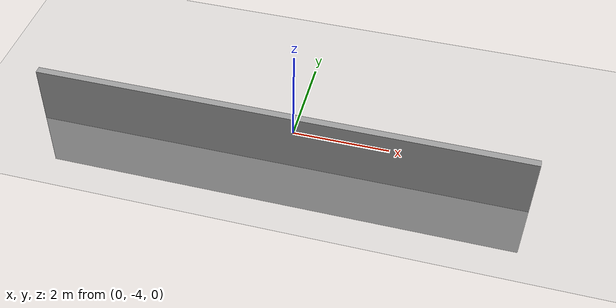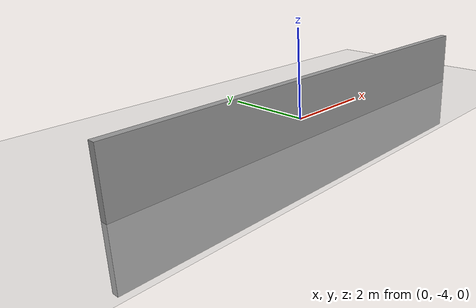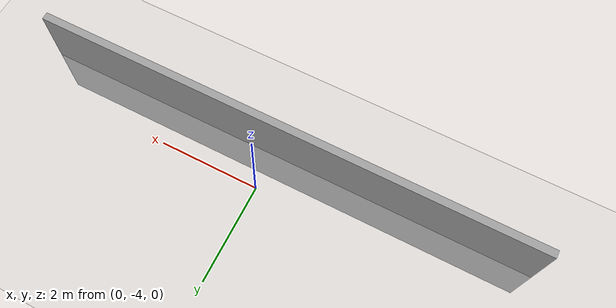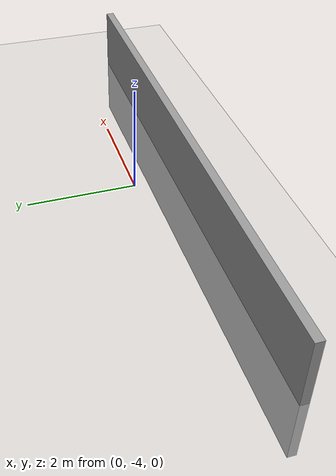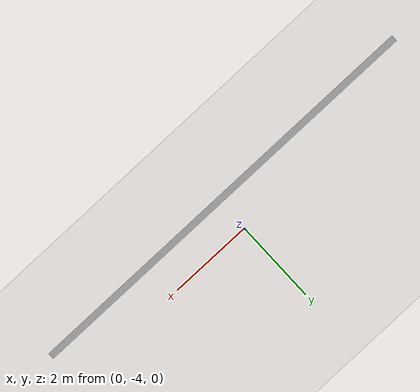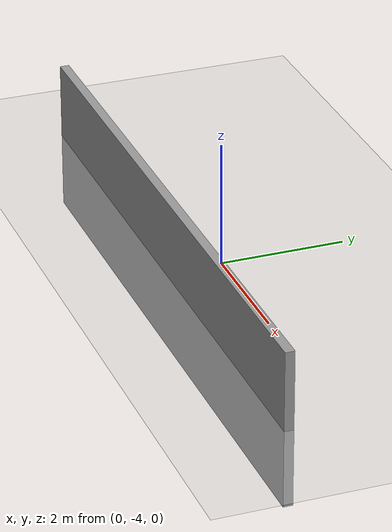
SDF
<?xml version="1.0" ?>
<sdf version="1.5">
  <world name="default">
    <!-- A global light source -->
    <include>
      <uri>model://sun</uri>
    </include>
    <!-- A ground plane -->
    <include>
      <uri>model://ground_plane</uri>
    </include>
    <!-- A unit box -->
    <model name='unit_box_0_0'>
      <pose frame=''>0 0.1 0 0 -0 0</pose>

      <link name='Wall_1'>
      <collision name='Wall_1_Collision'>
        <geometry>
          <box>
            <size>10 0.15 2.5</size>
          </box>
        </geometry>
        <pose frame=''>0 0 0 0 -0 0</pose>
      </collision>
      <visual name='Wall_1_Visual'>
        <pose frame=''>0 0 0 0 -0 0</pose>
        <geometry>
          <box>
            <size>10 0.15 2.5</size>
          </box>
        </geometry>
        <material>
          <script>
            <uri>file://media/materials/scripts/gazebo.material</uri>
            <name>Gazebo/Grey</name>
          </script>
          <ambient>1 1 1 1</ambient>
        </material>
        <meta>
          <layer>0</layer>
        </meta>
      </visual>
      <pose frame=''>-0.119159 -4.92736 0 0 -0 0</pose>
    </link>
    <static>1</static>
    </model>
  </world>
</sdf>
